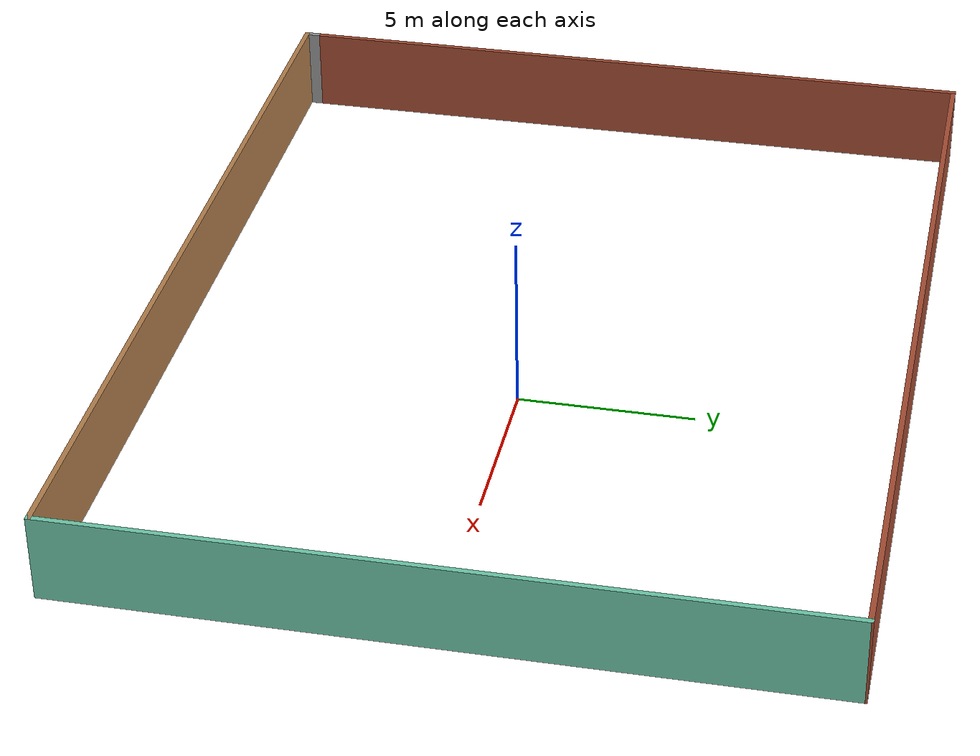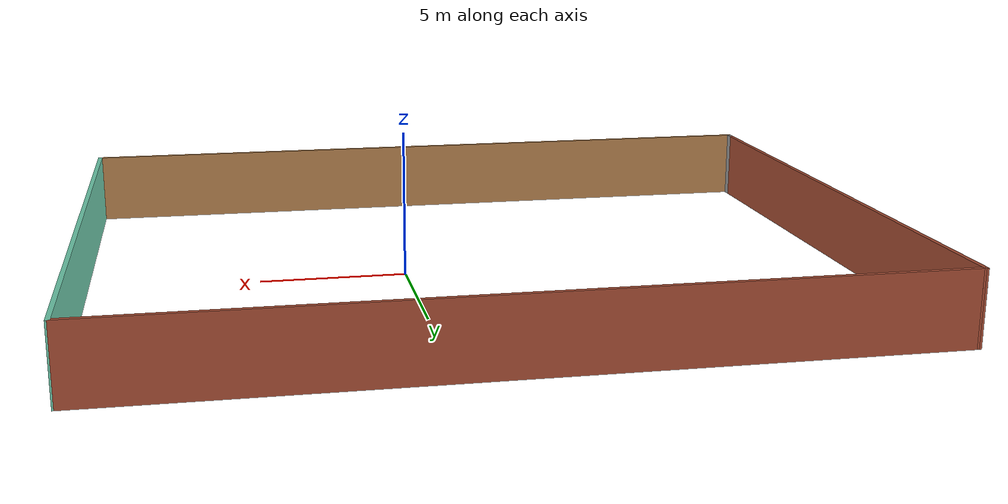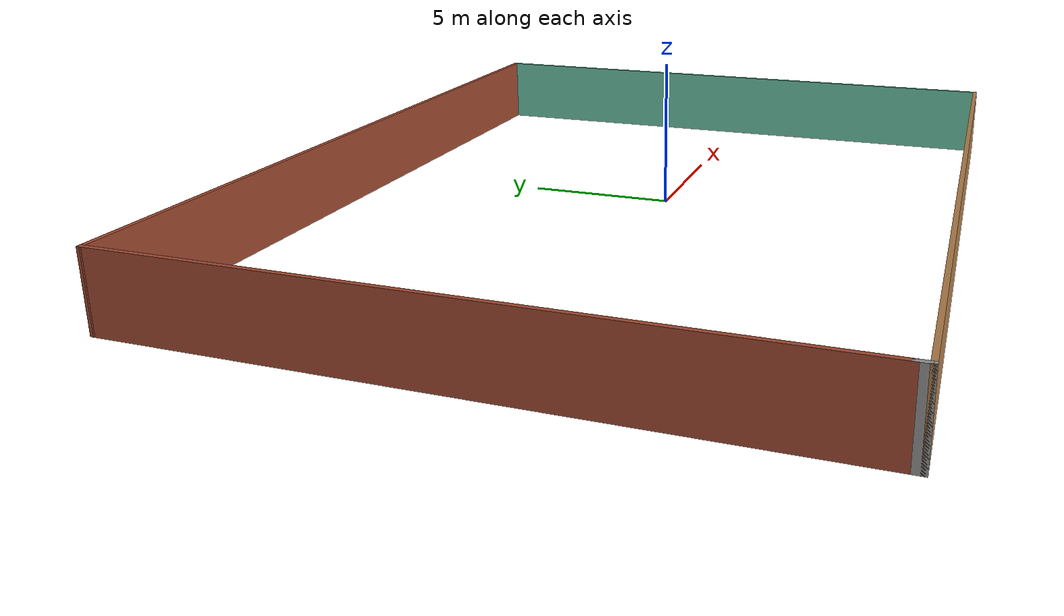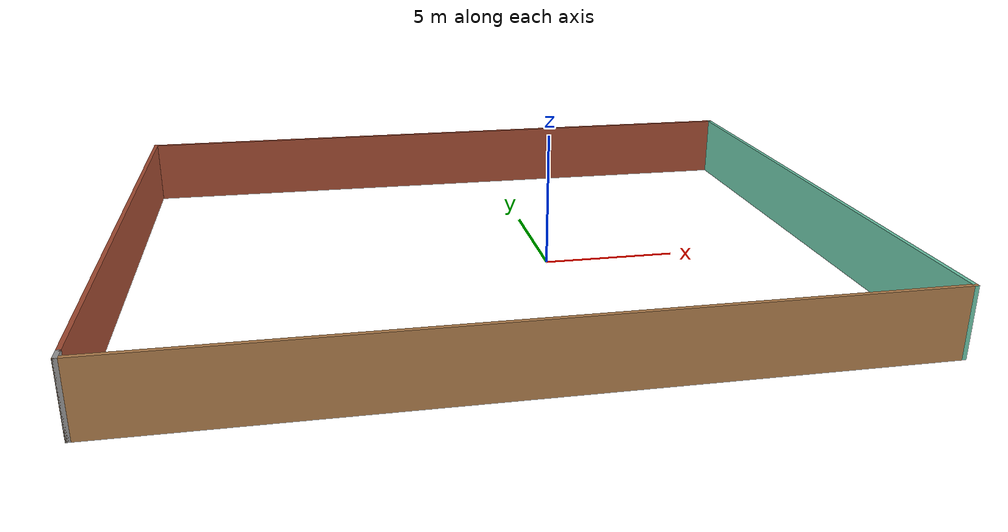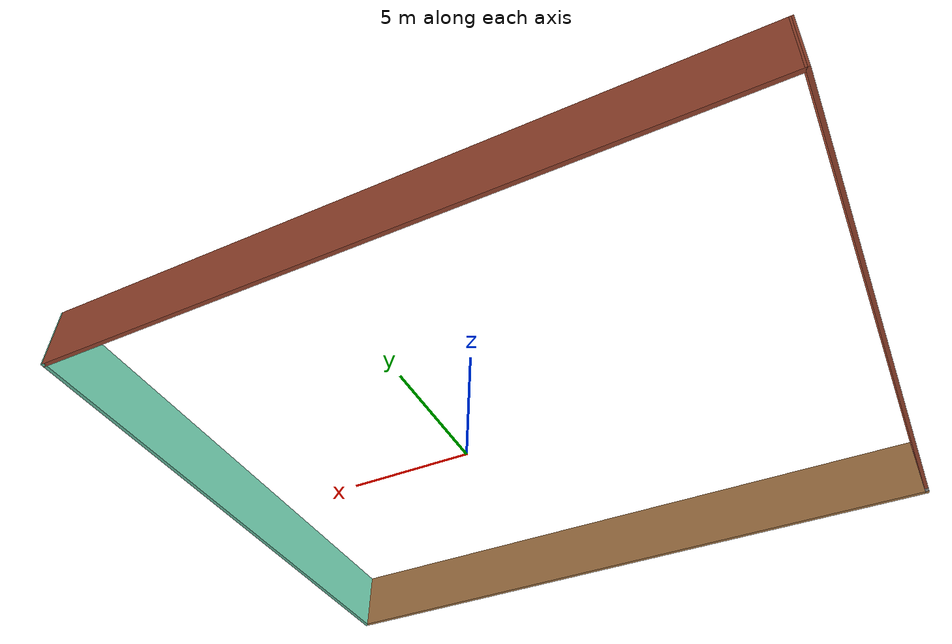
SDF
<?xml version='1.0'?>
<sdf version='1.7'>
  <model name='lab_walls'>
    <pose>-2.3642 0.330545 0 0 -0 0</pose>
    <link name='Wall_10'>
      <collision name='Wall_10_Collision'>
        <geometry>
          <box>
            <size>20.75 0.15 2.5</size>
          </box>
        </geometry>
        <pose>0 0 1.25 0 -0 0</pose>
      </collision>
      <visual name='Wall_10_Visual'>
        <pose>0 0 1.25 0 -0 0</pose>
        <geometry>
          <box>
            <size>20.75 0.15 2.5</size>
          </box>
        </geometry>
        <material>
          <script>
            <uri>file://media/materials/scripts/gazebo.material</uri>
            <name>Gazebo/Bricks</name>
          </script>
          <ambient>1 1 1 1</ambient>
        </material>
        <meta>
          <layer>0</layer>
        </meta>
      </visual>
      <pose>-13.175 0.174858 0 0 -0 -1.5708</pose>
    </link>
    <link name='Wall_11'>
      <collision name='Wall_11_Collision'>
        <geometry>
          <box>
            <size>0.5 0.15 2.5</size>
          </box>
        </geometry>
        <pose>0 0 1.25 0 -0 0</pose>
      </collision>
      <visual name='Wall_11_Visual'>
        <pose>0 0 1.25 0 -0 0</pose>
        <geometry>
          <box>
            <size>0.5 0.15 2.5</size>
          </box>
        </geometry>
        <material>
          <script>
            <uri>file://media/materials/scripts/gazebo.material</uri>
            <name>Gazebo/Grey</name>
          </script>
          <ambient>1 1 1 1</ambient>
        </material>
        <meta>
          <layer>0</layer>
        </meta>
      </visual>
      <pose>-13.175 -10.3001 0 0 -0 -1.5708</pose>
    </link>
    <link name='Wall_12'>
      <collision name='Wall_12_Collision'>
        <geometry>
          <box>
            <size>26.5 0.15 2.5</size>
          </box>
        </geometry>
        <pose>0 0 1.25 0 -0 0</pose>
      </collision>
      <visual name='Wall_12_Visual'>
        <pose>0 0 1.25 0 -0 0</pose>
        <geometry>
          <box>
            <size>26.5 0.15 2.5</size>
          </box>
        </geometry>
        <material>
          <script>
            <uri>file://media/materials/scripts/gazebo.material</uri>
            <name>Gazebo/Wood</name>
          </script>
          <ambient>1 1 1 1</ambient>
        </material>
        <meta>
          <layer>0</layer>
        </meta>
      </visual>
      <pose>0 -10.4751 0 0 -0 0</pose>
    </link>
    <link name='Wall_13'>
      <collision name='Wall_13_Collision'>
        <geometry>
          <box>
            <size>21 0.15 2.5</size>
          </box>
        </geometry>
        <pose>0 0 1.25 0 -0 0</pose>
      </collision>
      <visual name='Wall_13_Visual'>
        <pose>0 0 1.25 0 -0 0</pose>
        <geometry>
          <box>
            <size>21 0.15 2.5</size>
          </box>
        </geometry>
        <material>
          <script>
            <uri>file://media/materials/scripts/gazebo.material</uri>
            <name>Gazebo/Grey</name>
          </script>
          <ambient>0.435294 0.796078 0.67451 1</ambient>
        </material>
        <meta>
          <layer>0</layer>
        </meta>
      </visual>
      <pose>13.175 -0.050142 0 0 -0 1.5708</pose>
    </link>
    <link name='Wall_14'>
      <collision name='Wall_14_Collision'>
        <geometry>
          <box>
            <size>26.5 0.15 2.5</size>
          </box>
        </geometry>
        <pose>0 0 1.25 0 -0 0</pose>
      </collision>
      <visual name='Wall_14_Visual'>
        <pose>0 0 1.25 0 -0 0</pose>
        <geometry>
          <box>
            <size>26.5 0.15 2.5</size>
          </box>
        </geometry>
        <material>
          <script>
            <uri>file://media/materials/scripts/gazebo.material</uri>
            <name>Gazebo/Bricks</name>
          </script>
          <ambient>1 1 1 1</ambient>
        </material>
        <meta>
          <layer>0</layer>
        </meta>
      </visual>
      <pose>0 10.4249 0 0 -0 3.1378</pose>
    </link>
    <static>1</static>
  </model>
</sdf>
